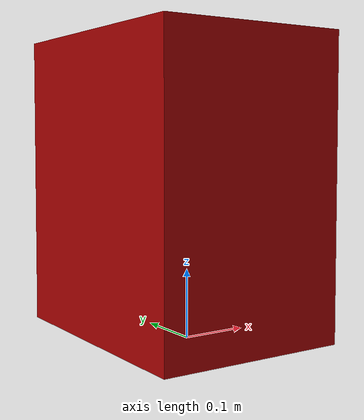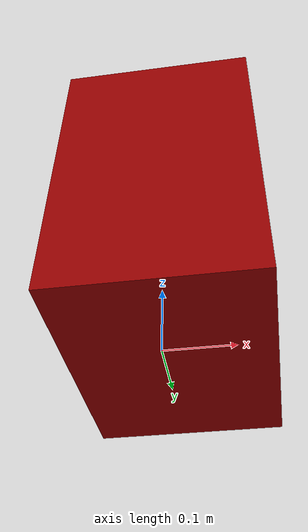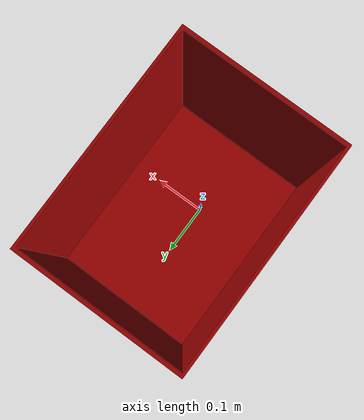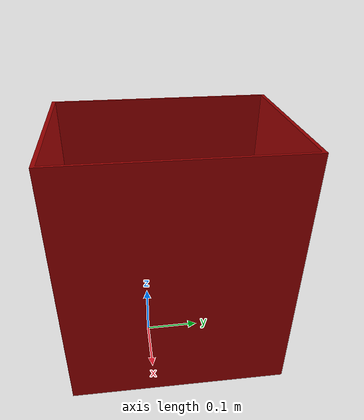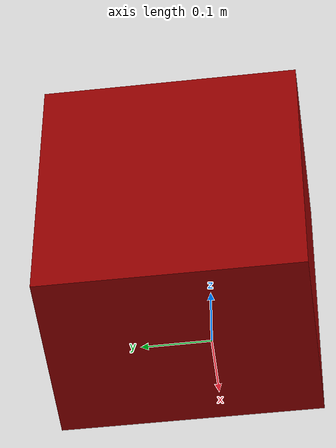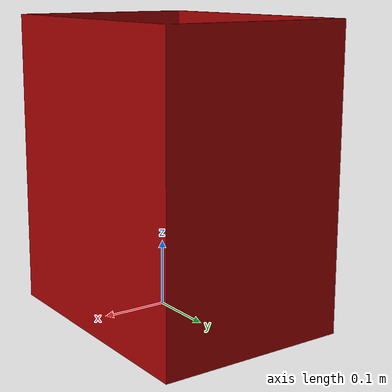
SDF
<?xml version="1.0"?>

<sdf version='1.7'>
  <model name='box_medium'>
    <link name='base'>
      <gravity>1</gravity>
      <inertial>
        <mass>1.0</mass>
        <inertia>
          <ixx>0.1</ixx>
          <iyy>0.1</iyy>
          <izz>0.1</izz>
        </inertia>
        <pose>0 0 0.1 0 0 0</pose>
      </inertial>
      <visual name="visual">
        <geometry>
          <mesh>
            <scale>0.01 0.01 0.01</scale>
            <uri>model://box_medium/meshes/box_medium.dae</uri>
          </mesh>
        </geometry>
        <material>
          <ambient>0.60 0.0 0.0 1</ambient>
          <diffuse>0.60 0.0 0.0 1</diffuse>
          <specular>0.8 0.8 0.8 1</specular>
        </material>
      </visual>
      <collision name="collider">
        <geometry>
          <mesh>
            <scale>0.01 0.01 0.01</scale>
            <uri>model://box_medium/meshes/box_medium.dae</uri>
          </mesh>
        </geometry>
      </collision>
    </link>
  </model>
</sdf>
